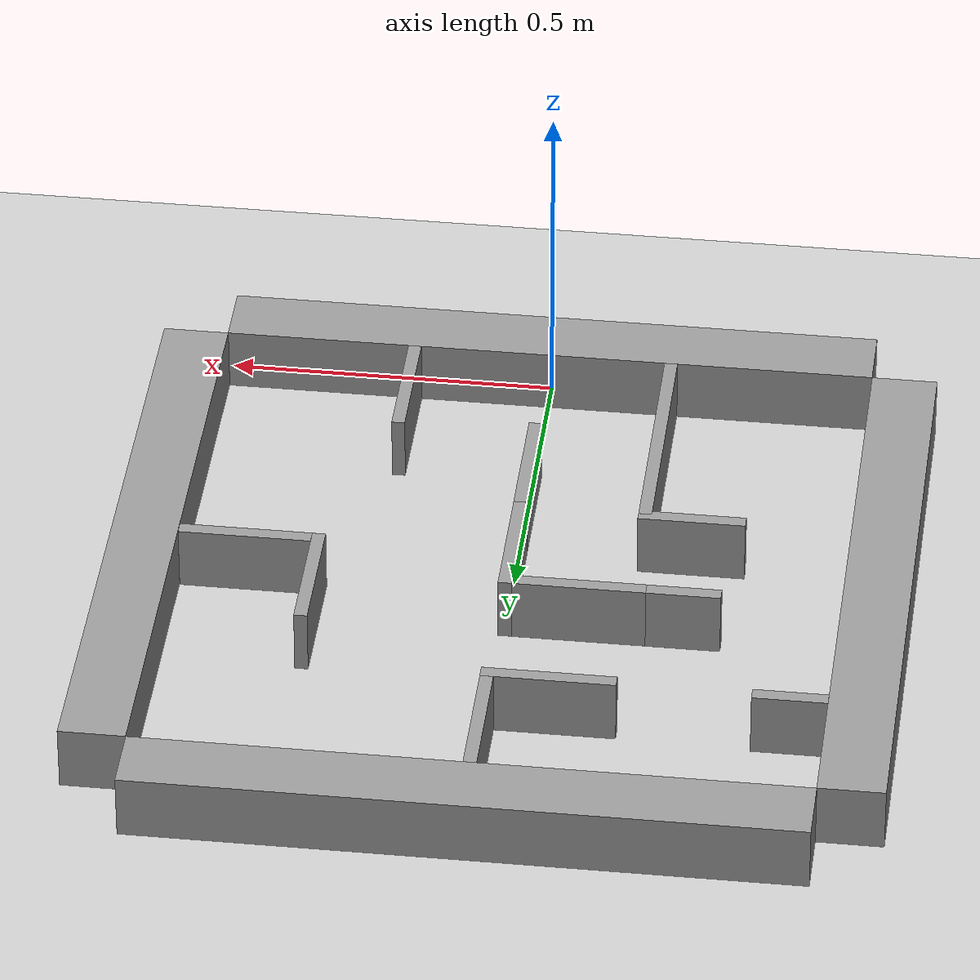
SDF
<sdf version="1.6">
 <world name="default">
  <physics type="ode">
   <ode><solver><type>quick</type><iters>50</iters><friction_model>cone_model</friction_model></solver></ode>
  </physics>
  <light name="sun" type="directional">
   <pose>0 0 10 0 -0 0</pose>
   <diffuse>0.8 0.8 0.8 1</diffuse>
   <specular>0.1 0.1 0.1 1</specular>
   <attenuation>
    <range>1000</range>
    <constant>0.9</constant>
    <linear>0.01</linear>
    <quadratic>0.001</quadratic>
   </attenuation>
   <direction>-0.5 0.5 -1</direction>
  </light>
  <model name="ground_plane">
   <static>1</static>
   <link name="link">
    <collision name="collision">
     <geometry><plane><normal>0 0 1</normal><size>100 100</size></plane></geometry>
     <surface><friction><ode><mu>100</mu><mu2>50</mu2></ode></friction></surface>
    </collision>
    <visual name="visual">
     <cast_shadows>0</cast_shadows>
     <geometry><plane><normal>0 0 1</normal><size>100 100</size></plane></geometry>
     <material>
      <script><uri>file://media/materials/scripts/gazebo.material</uri><name>Gazebo/Grey</name></script>
     </material>
    </visual>
   </link>
  </model>
  <gravity>0 0 -9.8</gravity>
  <magnetic_field>6e-06 2.3e-05 -4.2e-05</magnetic_field>
  <atmosphere type="adiabatic"/>
  <physics name="default_physics" default="0" type="ode">
   <max_step_size>0.001</max_step_size>
   <real_time_factor>1</real_time_factor>
   <real_time_update_rate>1000</real_time_update_rate>
  </physics>
  <scene><ambient>0.4 0.4 0.4 1</ambient><background>0.7 0.7 0.7 1</background><shadows>1</shadows></scene>
  <spherical_coordinates>
   <surface_model>EARTH_WGS84</surface_model>
   <latitude_deg>0</latitude_deg>
   <longitude_deg>0</longitude_deg>
   <elevation>0</elevation>
   <heading_deg>0</heading_deg>
  </spherical_coordinates>
  <model name="vector_world_1">
   <link name="link_0">
    <pose>0.028912 -0.558929 0 0 -0 0</pose>
    <inertial>
     <mass>1</mass>
     <inertia>
      <ixx>0.166667</ixx>
      <ixy>0</ixy>
      <ixz>0</ixz>
      <iyy>0.166667</iyy>
      <iyz>0</iyz>
      <izz>0.166667</izz>
     </inertia>
    </inertial>
    <visual name="visual">
     <geometry><box><size>1 0.1 0.1</size></box></geometry>
     <material>
      <lighting>1</lighting>
      <script><uri>file://media/materials/scripts/gazebo.material</uri><name>Gazebo/Grey</name></script>
      <ambient>0.3 0.3 0.3 1</ambient>
      <diffuse>0.7 0.7 0.7 1</diffuse>
      <specular>0.01 0.01 0.01 1</specular>
      <emissive>0 0 0 1</emissive>
      <shader type="vertex"><normal_map>__default__</normal_map></shader>
     </material>
    </visual>
    <collision name="collision">
     <geometry><box><size>1 0.1 0.1</size></box></geometry>
     <surface>
      <friction>
       <ode><mu>1</mu><mu2>1</mu2><fdir1>0 0 0</fdir1><slip1>0</slip1><slip2>0</slip2></ode>
       <torsional>
        <coefficient>1</coefficient>
        <patch_radius>0</patch_radius>
        <surface_radius>0</surface_radius>
        <use_patch_radius>1</use_patch_radius>
        <ode><slip>0</slip></ode>
       </torsional>
      </friction>
      <bounce><restitution_coefficient>0</restitution_coefficient><threshold>1e+06</threshold></bounce>
      <contact>
       <collide_without_contact>0</collide_without_contact>
       <collide_without_contact_bitmask>1</collide_without_contact_bitmask>
       <collide_bitmask>1</collide_bitmask>
       <ode>
        <soft_cfm>0</soft_cfm>
        <soft_erp>0.2</soft_erp>
        <kp>1e+13</kp>
        <kd>1</kd>
        <max_vel>0.01</max_vel>
        <min_depth>0</min_depth>
       </ode>
       <bullet>
        <split_impulse>1</split_impulse>
        <split_impulse_penetration_threshold>-0.01</split_impulse_penetration_threshold>
        <soft_cfm>0</soft_cfm>
        <soft_erp>0.2</soft_erp>
        <kp>1e+13</kp>
        <kd>1</kd>
       </bullet>
      </contact>
     </surface>
    </collision>
   </link>
   <link name="link_0_clone">
    <pose>0.578912 -0.008929 0 0 -0 1.57</pose>
    <inertial>
     <mass>1</mass>
     <inertia>
      <ixx>0.166667</ixx>
      <ixy>0</ixy>
      <ixz>0</ixz>
      <iyy>0.166667</iyy>
      <iyz>0</iyz>
      <izz>0.166667</izz>
     </inertia>
    </inertial>
    <visual name="visual">
     <geometry><box><size>1 0.1 0.1</size></box></geometry>
     <material>
      <lighting>1</lighting>
      <script><uri>file://media/materials/scripts/gazebo.material</uri><name>Gazebo/Grey</name></script>
      <ambient>0.3 0.3 0.3 1</ambient>
      <diffuse>0.7 0.7 0.7 1</diffuse>
      <specular>0.01 0.01 0.01 1</specular>
      <emissive>0 0 0 1</emissive>
      <shader type="vertex"><normal_map>__default__</normal_map></shader>
     </material>
    </visual>
    <collision name="collision">
     <geometry><box><size>1 0.1 0.1</size></box></geometry>
     <surface>
      <friction>
       <ode><mu>1</mu><mu2>1</mu2><fdir1>0 0 0</fdir1><slip1>0</slip1><slip2>0</slip2></ode>
       <torsional>
        <coefficient>1</coefficient>
        <patch_radius>0</patch_radius>
        <surface_radius>0</surface_radius>
        <use_patch_radius>1</use_patch_radius>
        <ode><slip>0</slip></ode>
       </torsional>
      </friction>
      <bounce><restitution_coefficient>0</restitution_coefficient><threshold>1e+06</threshold></bounce>
      <contact>
       <collide_without_contact>0</collide_without_contact>
       <collide_without_contact_bitmask>1</collide_without_contact_bitmask>
       <collide_bitmask>1</collide_bitmask>
       <ode>
        <soft_cfm>0</soft_cfm>
        <soft_erp>0.2</soft_erp>
        <kp>1e+13</kp>
        <kd>1</kd>
        <max_vel>0.01</max_vel>
        <min_depth>0</min_depth>
       </ode>
       <bullet>
        <split_impulse>1</split_impulse>
        <split_impulse_penetration_threshold>-0.01</split_impulse_penetration_threshold>
        <soft_cfm>0</soft_cfm>
        <soft_erp>0.2</soft_erp>
        <kp>1e+13</kp>
        <kd>1</kd>
       </bullet>
      </contact>
     </surface>
    </collision>
   </link>
   <link name="link_0_clone_0">
    <pose>-0.521088 -0.008929 0 0 -0 1.57</pose>
    <inertial>
     <mass>1</mass>
     <inertia>
      <ixx>0.166667</ixx>
      <ixy>0</ixy>
      <ixz>0</ixz>
      <iyy>0.166667</iyy>
      <iyz>0</iyz>
      <izz>0.166667</izz>
     </inertia>
    </inertial>
    <visual name="visual">
     <geometry><box><size>1 0.1 0.1</size></box></geometry>
     <material>
      <lighting>1</lighting>
      <script><uri>file://media/materials/scripts/gazebo.material</uri><name>Gazebo/Grey</name></script>
      <ambient>0.3 0.3 0.3 1</ambient>
      <diffuse>0.7 0.7 0.7 1</diffuse>
      <specular>0.01 0.01 0.01 1</specular>
      <emissive>0 0 0 1</emissive>
      <shader type="vertex"><normal_map>__default__</normal_map></shader>
     </material>
    </visual>
    <collision name="collision">
     <geometry><box><size>1 0.1 0.1</size></box></geometry>
     <surface>
      <friction>
       <ode><mu>1</mu><mu2>1</mu2><fdir1>0 0 0</fdir1><slip1>0</slip1><slip2>0</slip2></ode>
       <torsional>
        <coefficient>1</coefficient>
        <patch_radius>0</patch_radius>
        <surface_radius>0</surface_radius>
        <use_patch_radius>1</use_patch_radius>
        <ode><slip>0</slip></ode>
       </torsional>
      </friction>
      <bounce><restitution_coefficient>0</restitution_coefficient><threshold>1e+06</threshold></bounce>
      <contact>
       <collide_without_contact>0</collide_without_contact>
       <collide_without_contact_bitmask>1</collide_without_contact_bitmask>
       <collide_bitmask>1</collide_bitmask>
       <ode>
        <soft_cfm>0</soft_cfm>
        <soft_erp>0.2</soft_erp>
        <kp>1e+13</kp>
        <kd>1</kd>
        <max_vel>0.01</max_vel>
        <min_depth>0</min_depth>
       </ode>
       <bullet>
        <split_impulse>1</split_impulse>
        <split_impulse_penetration_threshold>-0.01</split_impulse_penetration_threshold>
        <soft_cfm>0</soft_cfm>
        <soft_erp>0.2</soft_erp>
        <kp>1e+13</kp>
        <kd>1</kd>
       </bullet>
      </contact>
     </surface>
    </collision>
   </link>
   <link name="link_0_clone_1">
    <pose>0.028912 0.541071 0 0 -0 0</pose>
    <inertial>
     <mass>1</mass>
     <inertia>
      <ixx>0.166667</ixx>
      <ixy>0</ixy>
      <ixz>0</ixz>
      <iyy>0.166667</iyy>
      <iyz>0</iyz>
      <izz>0.166667</izz>
     </inertia>
    </inertial>
    <visual name="visual">
     <geometry><box><size>1 0.1 0.1</size></box></geometry>
     <material>
      <lighting>1</lighting>
      <script><uri>file://media/materials/scripts/gazebo.material</uri><name>Gazebo/Grey</name></script>
      <ambient>0.3 0.3 0.3 1</ambient>
      <diffuse>0.7 0.7 0.7 1</diffuse>
      <specular>0.01 0.01 0.01 1</specular>
      <emissive>0 0 0 1</emissive>
      <shader type="vertex"><normal_map>__default__</normal_map></shader>
     </material>
    </visual>
    <collision name="collision">
     <geometry><box><size>1 0.1 0.1</size></box></geometry>
     <surface>
      <friction>
       <ode><mu>1</mu><mu2>1</mu2><fdir1>0 0 0</fdir1><slip1>0</slip1><slip2>0</slip2></ode>
       <torsional>
        <coefficient>1</coefficient>
        <patch_radius>0</patch_radius>
        <surface_radius>0</surface_radius>
        <use_patch_radius>1</use_patch_radius>
        <ode><slip>0</slip></ode>
       </torsional>
      </friction>
      <bounce><restitution_coefficient>0</restitution_coefficient><threshold>1e+06</threshold></bounce>
      <contact>
       <collide_without_contact>0</collide_without_contact>
       <collide_without_contact_bitmask>1</collide_without_contact_bitmask>
       <collide_bitmask>1</collide_bitmask>
       <ode>
        <soft_cfm>0</soft_cfm>
        <soft_erp>0.2</soft_erp>
        <kp>1e+13</kp>
        <kd>1</kd>
        <max_vel>0.01</max_vel>
        <min_depth>0</min_depth>
       </ode>
       <bullet>
        <split_impulse>1</split_impulse>
        <split_impulse_penetration_threshold>-0.01</split_impulse_penetration_threshold>
        <soft_cfm>0</soft_cfm>
        <soft_erp>0.2</soft_erp>
        <kp>1e+13</kp>
        <kd>1</kd>
       </bullet>
      </contact>
     </surface>
    </collision>
   </link>
   <link name="link_1">
    <pose>0.428514 -0.008929 0 0 -0 0</pose>
    <inertial>
     <mass>1</mass>
     <inertia>
      <ixx>0.166667</ixx>
      <ixy>0</ixy>
      <ixz>0</ixz>
      <iyy>0.166667</iyy>
      <iyz>0</iyz>
      <izz>0.166667</izz>
     </inertia>
    </inertial>
    <visual name="visual">
     <geometry><box><size>0.2 0.02 0.1</size></box></geometry>
     <material>
      <lighting>1</lighting>
      <script><uri>file://media/materials/scripts/gazebo.material</uri><name>Gazebo/Grey</name></script>
      <ambient>0.3 0.3 0.3 1</ambient>
      <diffuse>0.7 0.7 0.7 1</diffuse>
      <specular>0.01 0.01 0.01 1</specular>
      <emissive>0 0 0 1</emissive>
      <shader type="vertex"><normal_map>__default__</normal_map></shader>
     </material>
    </visual>
    <collision name="collision">
     <geometry><box><size>0.2 0.02 0.1</size></box></geometry>
     <surface>
      <friction>
       <ode><mu>1</mu><mu2>1</mu2><fdir1>0 0 0</fdir1><slip1>0</slip1><slip2>0</slip2></ode>
       <torsional>
        <coefficient>1</coefficient>
        <patch_radius>0</patch_radius>
        <surface_radius>0</surface_radius>
        <use_patch_radius>1</use_patch_radius>
        <ode><slip>0</slip></ode>
       </torsional>
      </friction>
      <bounce><restitution_coefficient>0</restitution_coefficient><threshold>1e+06</threshold></bounce>
      <contact>
       <collide_without_contact>0</collide_without_contact>
       <collide_without_contact_bitmask>1</collide_without_contact_bitmask>
       <collide_bitmask>1</collide_bitmask>
       <ode>
        <soft_cfm>0</soft_cfm>
        <soft_erp>0.2</soft_erp>
        <kp>1e+13</kp>
        <kd>1</kd>
        <max_vel>0.01</max_vel>
        <min_depth>0</min_depth>
       </ode>
       <bullet>
        <split_impulse>1</split_impulse>
        <split_impulse_penetration_threshold>-0.01</split_impulse_penetration_threshold>
        <soft_cfm>0</soft_cfm>
        <soft_erp>0.2</soft_erp>
        <kp>1e+13</kp>
        <kd>1</kd>
       </bullet>
      </contact>
     </surface>
    </collision>
   </link>
   <link name="link_1_clone">
    <pose>0.318435 0.081079 0 0 -0 1.57</pose>
    <inertial>
     <mass>1</mass>
     <inertia>
      <ixx>0.166667</ixx>
      <ixy>0</ixy>
      <ixz>0</ixz>
      <iyy>0.166667</iyy>
      <iyz>0</iyz>
      <izz>0.166667</izz>
     </inertia>
    </inertial>
    <visual name="visual">
     <geometry><box><size>0.2 0.02 0.1</size></box></geometry>
     <material>
      <lighting>1</lighting>
      <script><uri>file://media/materials/scripts/gazebo.material</uri><name>Gazebo/Grey</name></script>
      <ambient>0.3 0.3 0.3 1</ambient>
      <diffuse>0.7 0.7 0.7 1</diffuse>
      <specular>0.01 0.01 0.01 1</specular>
      <emissive>0 0 0 1</emissive>
      <shader type="vertex"><normal_map>__default__</normal_map></shader>
     </material>
    </visual>
    <collision name="collision">
     <geometry><box><size>0.2 0.02 0.1</size></box></geometry>
     <surface>
      <friction>
       <ode><mu>1</mu><mu2>1</mu2><fdir1>0 0 0</fdir1><slip1>0</slip1><slip2>0</slip2></ode>
       <torsional>
        <coefficient>1</coefficient>
        <patch_radius>0</patch_radius>
        <surface_radius>0</surface_radius>
        <use_patch_radius>1</use_patch_radius>
        <ode><slip>0</slip></ode>
       </torsional>
      </friction>
      <bounce><restitution_coefficient>0</restitution_coefficient><threshold>1e+06</threshold></bounce>
      <contact>
       <collide_without_contact>0</collide_without_contact>
       <collide_without_contact_bitmask>1</collide_without_contact_bitmask>
       <collide_bitmask>1</collide_bitmask>
       <ode>
        <soft_cfm>0</soft_cfm>
        <soft_erp>0.2</soft_erp>
        <kp>1e+13</kp>
        <kd>1</kd>
        <max_vel>0.01</max_vel>
        <min_depth>0</min_depth>
       </ode>
       <bullet>
        <split_impulse>1</split_impulse>
        <split_impulse_penetration_threshold>-0.01</split_impulse_penetration_threshold>
        <soft_cfm>0</soft_cfm>
        <soft_erp>0.2</soft_erp>
        <kp>1e+13</kp>
        <kd>1</kd>
       </bullet>
      </contact>
     </surface>
    </collision>
   </link>
   <link name="link_1_clone_0">
    <pose>0.028912 0.391063 0 0 -0 1.57</pose>
    <inertial>
     <mass>1</mass>
     <inertia>
      <ixx>0.166667</ixx>
      <ixy>0</ixy>
      <ixz>0</ixz>
      <iyy>0.166667</iyy>
      <iyz>0</iyz>
      <izz>0.166667</izz>
     </inertia>
    </inertial>
    <visual name="visual">
     <geometry><box><size>0.2 0.02 0.1</size></box></geometry>
     <material>
      <lighting>1</lighting>
      <script><uri>file://media/materials/scripts/gazebo.material</uri><name>Gazebo/Grey</name></script>
      <ambient>0.3 0.3 0.3 1</ambient>
      <diffuse>0.7 0.7 0.7 1</diffuse>
      <specular>0.01 0.01 0.01 1</specular>
      <emissive>0 0 0 1</emissive>
      <shader type="vertex"><normal_map>__default__</normal_map></shader>
     </material>
    </visual>
    <collision name="collision">
     <geometry><box><size>0.2 0.02 0.1</size></box></geometry>
     <surface>
      <friction>
       <ode><mu>1</mu><mu2>1</mu2><fdir1>0 0 0</fdir1><slip1>0</slip1><slip2>0</slip2></ode>
       <torsional>
        <coefficient>1</coefficient>
        <patch_radius>0</patch_radius>
        <surface_radius>0</surface_radius>
        <use_patch_radius>1</use_patch_radius>
        <ode><slip>0</slip></ode>
       </torsional>
      </friction>
      <bounce><restitution_coefficient>0</restitution_coefficient><threshold>1e+06</threshold></bounce>
      <contact>
       <collide_without_contact>0</collide_without_contact>
       <collide_without_contact_bitmask>1</collide_without_contact_bitmask>
       <collide_bitmask>1</collide_bitmask>
       <ode>
        <soft_cfm>0</soft_cfm>
        <soft_erp>0.2</soft_erp>
        <kp>1e+13</kp>
        <kd>1</kd>
        <max_vel>0.01</max_vel>
        <min_depth>0</min_depth>
       </ode>
       <bullet>
        <split_impulse>1</split_impulse>
        <split_impulse_penetration_threshold>-0.01</split_impulse_penetration_threshold>
        <soft_cfm>0</soft_cfm>
        <soft_erp>0.2</soft_erp>
        <kp>1e+13</kp>
        <kd>1</kd>
       </bullet>
      </contact>
     </surface>
    </collision>
   </link>
   <link name="link_1_clone_0_clone">
    <pose>0.028912 -0.032001 0 0 -0 1.57</pose>
    <inertial>
     <mass>1</mass>
     <inertia>
      <ixx>0.166667</ixx>
      <ixy>0</ixy>
      <ixz>0</ixz>
      <iyy>0.166667</iyy>
      <iyz>0</iyz>
      <izz>0.166667</izz>
     </inertia>
    </inertial>
    <visual name="visual">
     <geometry><box><size>0.2 0.02 0.1</size></box></geometry>
     <material>
      <lighting>1</lighting>
      <script><uri>file://media/materials/scripts/gazebo.material</uri><name>Gazebo/Grey</name></script>
      <ambient>0.3 0.3 0.3 1</ambient>
      <diffuse>0.7 0.7 0.7 1</diffuse>
      <specular>0.01 0.01 0.01 1</specular>
      <emissive>0 0 0 1</emissive>
      <shader type="vertex"><normal_map>__default__</normal_map></shader>
     </material>
    </visual>
    <collision name="collision">
     <geometry><box><size>0.2 0.02 0.1</size></box></geometry>
     <surface>
      <friction>
       <ode><mu>1</mu><mu2>1</mu2><fdir1>0 0 0</fdir1><slip1>0</slip1><slip2>0</slip2></ode>
       <torsional>
        <coefficient>1</coefficient>
        <patch_radius>0</patch_radius>
        <surface_radius>0</surface_radius>
        <use_patch_radius>1</use_patch_radius>
        <ode><slip>0</slip></ode>
       </torsional>
      </friction>
      <bounce><restitution_coefficient>0</restitution_coefficient><threshold>1e+06</threshold></bounce>
      <contact>
       <collide_without_contact>0</collide_without_contact>
       <collide_without_contact_bitmask>1</collide_without_contact_bitmask>
       <collide_bitmask>1</collide_bitmask>
       <ode>
        <soft_cfm>0</soft_cfm>
        <soft_erp>0.2</soft_erp>
        <kp>1e+13</kp>
        <kd>1</kd>
        <max_vel>0.01</max_vel>
        <min_depth>0</min_depth>
       </ode>
       <bullet>
        <split_impulse>1</split_impulse>
        <split_impulse_penetration_threshold>-0.01</split_impulse_penetration_threshold>
        <soft_cfm>0</soft_cfm>
        <soft_erp>0.2</soft_erp>
        <kp>1e+13</kp>
        <kd>1</kd>
       </bullet>
      </contact>
     </surface>
    </collision>
   </link>
   <link name="link_1_clone_0_clone_0">
    <pose>0.028912 -0.232016 0 0 -0 1.57</pose>
    <inertial>
     <mass>1</mass>
     <inertia>
      <ixx>0.166667</ixx>
      <ixy>0</ixy>
      <ixz>0</ixz>
      <iyy>0.166667</iyy>
      <iyz>0</iyz>
      <izz>0.166667</izz>
     </inertia>
    </inertial>
    <visual name="visual">
     <geometry><box><size>0.2 0.02 0.1</size></box></geometry>
     <material>
      <lighting>1</lighting>
      <script><uri>file://media/materials/scripts/gazebo.material</uri><name>Gazebo/Grey</name></script>
      <ambient>0.3 0.3 0.3 1</ambient>
      <diffuse>0.7 0.7 0.7 1</diffuse>
      <specular>0.01 0.01 0.01 1</specular>
      <emissive>0 0 0 1</emissive>
      <shader type="vertex"><normal_map>__default__</normal_map></shader>
     </material>
    </visual>
    <collision name="collision">
     <geometry><box><size>0.2 0.02 0.1</size></box></geometry>
     <surface>
      <friction>
       <ode><mu>1</mu><mu2>1</mu2><fdir1>0 0 0</fdir1><slip1>0</slip1><slip2>0</slip2></ode>
       <torsional>
        <coefficient>1</coefficient>
        <patch_radius>0</patch_radius>
        <surface_radius>0</surface_radius>
        <use_patch_radius>1</use_patch_radius>
        <ode><slip>0</slip></ode>
       </torsional>
      </friction>
      <bounce><restitution_coefficient>0</restitution_coefficient><threshold>1e+06</threshold></bounce>
      <contact>
       <collide_without_contact>0</collide_without_contact>
       <collide_without_contact_bitmask>1</collide_without_contact_bitmask>
       <collide_bitmask>1</collide_bitmask>
       <ode>
        <soft_cfm>0</soft_cfm>
        <soft_erp>0.2</soft_erp>
        <kp>1e+13</kp>
        <kd>1</kd>
        <max_vel>0.01</max_vel>
        <min_depth>0</min_depth>
       </ode>
       <bullet>
        <split_impulse>1</split_impulse>
        <split_impulse_penetration_threshold>-0.01</split_impulse_penetration_threshold>
        <soft_cfm>0</soft_cfm>
        <soft_erp>0.2</soft_erp>
        <kp>1e+13</kp>
        <kd>1</kd>
       </bullet>
      </contact>
     </surface>
    </collision>
   </link>
   <link name="link_1_clone_0_clone_0_clone">
    <pose>-0.160723 -0.316474 0 0 -0 1.57</pose>
    <inertial>
     <mass>1.92446</mass>
     <inertia>
      <ixx>0.320744</ixx>
      <ixy>0</ixy>
      <ixz>0</ixz>
      <iyy>0.754316</iyy>
      <iyz>0</iyz>
      <izz>0.754316</izz>
     </inertia>
    </inertial>
    <visual name="visual">
     <geometry><box><size>0.384894 0.02 0.1</size></box></geometry>
     <material>
      <lighting>1</lighting>
      <script><uri>file://media/materials/scripts/gazebo.material</uri><name>Gazebo/Grey</name></script>
      <ambient>0.3 0.3 0.3 1</ambient>
      <diffuse>0.7 0.7 0.7 1</diffuse>
      <specular>0.01 0.01 0.01 1</specular>
      <emissive>0 0 0 1</emissive>
      <shader type="vertex"><normal_map>__default__</normal_map></shader>
     </material>
    </visual>
    <collision name="collision">
     <geometry><box><size>0.384894 0.02 0.1</size></box></geometry>
     <surface>
      <friction>
       <ode><mu>1</mu><mu2>1</mu2><fdir1>0 0 0</fdir1><slip1>0</slip1><slip2>0</slip2></ode>
       <torsional>
        <coefficient>1</coefficient>
        <patch_radius>0</patch_radius>
        <surface_radius>0</surface_radius>
        <use_patch_radius>1</use_patch_radius>
        <ode><slip>0</slip></ode>
       </torsional>
      </friction>
      <bounce><restitution_coefficient>0</restitution_coefficient><threshold>1e+06</threshold></bounce>
      <contact>
       <collide_without_contact>0</collide_without_contact>
       <collide_without_contact_bitmask>1</collide_without_contact_bitmask>
       <collide_bitmask>1</collide_bitmask>
       <ode>
        <soft_cfm>0</soft_cfm>
        <soft_erp>0.2</soft_erp>
        <kp>1e+13</kp>
        <kd>1</kd>
        <max_vel>0.01</max_vel>
        <min_depth>0</min_depth>
       </ode>
       <bullet>
        <split_impulse>1</split_impulse>
        <split_impulse_penetration_threshold>-0.01</split_impulse_penetration_threshold>
        <soft_cfm>0</soft_cfm>
        <soft_erp>0.2</soft_erp>
        <kp>1e+13</kp>
        <kd>1</kd>
       </bullet>
      </contact>
     </surface>
    </collision>
   </link>
   <link name="link_1_clone_0_clone_1">
    <pose>0.236977 -0.408921 0 0 -0 1.57</pose>
    <inertial>
     <mass>1</mass>
     <inertia>
      <ixx>0.166667</ixx>
      <ixy>0</ixy>
      <ixz>0</ixz>
      <iyy>0.166667</iyy>
      <iyz>0</iyz>
      <izz>0.166667</izz>
     </inertia>
    </inertial>
    <visual name="visual">
     <geometry><box><size>0.2 0.02 0.1</size></box></geometry>
     <material>
      <lighting>1</lighting>
      <script><uri>file://media/materials/scripts/gazebo.material</uri><name>Gazebo/Grey</name></script>
      <ambient>0.3 0.3 0.3 1</ambient>
      <diffuse>0.7 0.7 0.7 1</diffuse>
      <specular>0.01 0.01 0.01 1</specular>
      <emissive>0 0 0 1</emissive>
      <shader type="vertex"><normal_map>__default__</normal_map></shader>
     </material>
    </visual>
    <collision name="collision">
     <geometry><box><size>0.2 0.02 0.1</size></box></geometry>
     <surface>
      <friction>
       <ode><mu>1</mu><mu2>1</mu2><fdir1>0 0 0</fdir1><slip1>0</slip1><slip2>0</slip2></ode>
       <torsional>
        <coefficient>1</coefficient>
        <patch_radius>0</patch_radius>
        <surface_radius>0</surface_radius>
        <use_patch_radius>1</use_patch_radius>
        <ode><slip>0</slip></ode>
       </torsional>
      </friction>
      <bounce><restitution_coefficient>0</restitution_coefficient><threshold>1e+06</threshold></bounce>
      <contact>
       <collide_without_contact>0</collide_without_contact>
       <collide_without_contact_bitmask>1</collide_without_contact_bitmask>
       <collide_bitmask>1</collide_bitmask>
       <ode>
        <soft_cfm>0</soft_cfm>
        <soft_erp>0.2</soft_erp>
        <kp>1e+13</kp>
        <kd>1</kd>
        <max_vel>0.01</max_vel>
        <min_depth>0</min_depth>
       </ode>
       <bullet>
        <split_impulse>1</split_impulse>
        <split_impulse_penetration_threshold>-0.01</split_impulse_penetration_threshold>
        <soft_cfm>0</soft_cfm>
        <soft_erp>0.2</soft_erp>
        <kp>1e+13</kp>
        <kd>1</kd>
       </bullet>
      </contact>
     </surface>
    </collision>
   </link>
   <link name="link_1_clone_1">
    <pose>-0.061008 0.281055 0 0 -0 0</pose>
    <inertial>
     <mass>1</mass>
     <inertia>
      <ixx>0.166667</ixx>
      <ixy>0</ixy>
      <ixz>0</ixz>
      <iyy>0.166667</iyy>
      <iyz>0</iyz>
      <izz>0.166667</izz>
     </inertia>
    </inertial>
    <visual name="visual">
     <geometry><box><size>0.2 0.02 0.1</size></box></geometry>
     <material>
      <lighting>1</lighting>
      <script><uri>file://media/materials/scripts/gazebo.material</uri><name>Gazebo/Grey</name></script>
      <ambient>0.3 0.3 0.3 1</ambient>
      <diffuse>0.7 0.7 0.7 1</diffuse>
      <specular>0.01 0.01 0.01 1</specular>
      <emissive>0 0 0 1</emissive>
      <shader type="vertex"><normal_map>__default__</normal_map></shader>
     </material>
    </visual>
    <collision name="collision">
     <geometry><box><size>0.2 0.02 0.1</size></box></geometry>
     <surface>
      <friction>
       <ode><mu>1</mu><mu2>1</mu2><fdir1>0 0 0</fdir1><slip1>0</slip1><slip2>0</slip2></ode>
       <torsional>
        <coefficient>1</coefficient>
        <patch_radius>0</patch_radius>
        <surface_radius>0</surface_radius>
        <use_patch_radius>1</use_patch_radius>
        <ode><slip>0</slip></ode>
       </torsional>
      </friction>
      <bounce><restitution_coefficient>0</restitution_coefficient><threshold>1e+06</threshold></bounce>
      <contact>
       <collide_without_contact>0</collide_without_contact>
       <collide_without_contact_bitmask>1</collide_without_contact_bitmask>
       <collide_bitmask>1</collide_bitmask>
       <ode>
        <soft_cfm>0</soft_cfm>
        <soft_erp>0.2</soft_erp>
        <kp>1e+13</kp>
        <kd>1</kd>
        <max_vel>0.01</max_vel>
        <min_depth>0</min_depth>
       </ode>
       <bullet>
        <split_impulse>1</split_impulse>
        <split_impulse_penetration_threshold>-0.01</split_impulse_penetration_threshold>
        <soft_cfm>0</soft_cfm>
        <soft_erp>0.2</soft_erp>
        <kp>1e+13</kp>
        <kd>1</kd>
       </bullet>
      </contact>
     </surface>
    </collision>
   </link>
   <link name="link_1_clone_2">
    <pose>-0.081167 0.058007 0 0 -0 0</pose>
    <inertial>
     <mass>1</mass>
     <inertia>
      <ixx>0.166667</ixx>
      <ixy>0</ixy>
      <ixz>0</ixz>
      <iyy>0.166667</iyy>
      <iyz>0</iyz>
      <izz>0.166667</izz>
     </inertia>
    </inertial>
    <visual name="visual">
     <geometry><box><size>0.2 0.02 0.1</size></box></geometry>
     <material>
      <lighting>1</lighting>
      <script><uri>file://media/materials/scripts/gazebo.material</uri><name>Gazebo/Grey</name></script>
      <ambient>0.3 0.3 0.3 1</ambient>
      <diffuse>0.7 0.7 0.7 1</diffuse>
      <specular>0.01 0.01 0.01 1</specular>
      <emissive>0 0 0 1</emissive>
      <shader type="vertex"><normal_map>__default__</normal_map></shader>
     </material>
    </visual>
    <collision name="collision">
     <geometry><box><size>0.2 0.02 0.1</size></box></geometry>
     <surface>
      <friction>
       <ode><mu>1</mu><mu2>1</mu2><fdir1>0 0 0</fdir1><slip1>0</slip1><slip2>0</slip2></ode>
       <torsional>
        <coefficient>1</coefficient>
        <patch_radius>0</patch_radius>
        <surface_radius>0</surface_radius>
        <use_patch_radius>1</use_patch_radius>
        <ode><slip>0</slip></ode>
       </torsional>
      </friction>
      <bounce><restitution_coefficient>0</restitution_coefficient><threshold>1e+06</threshold></bounce>
      <contact>
       <collide_without_contact>0</collide_without_contact>
       <collide_without_contact_bitmask>1</collide_without_contact_bitmask>
       <collide_bitmask>1</collide_bitmask>
       <ode>
        <soft_cfm>0</soft_cfm>
        <soft_erp>0.2</soft_erp>
        <kp>1e+13</kp>
        <kd>1</kd>
        <max_vel>0.01</max_vel>
        <min_depth>0</min_depth>
       </ode>
       <bullet>
        <split_impulse>1</split_impulse>
        <split_impulse_penetration_threshold>-0.01</split_impulse_penetration_threshold>
        <soft_cfm>0</soft_cfm>
        <soft_erp>0.2</soft_erp>
        <kp>1e+13</kp>
        <kd>1</kd>
       </bullet>
      </contact>
     </surface>
    </collision>
   </link>
   <link name="link_1_clone_2_clone">
    <pose>-0.23699 0.058007 0 0 -0 0</pose>
    <inertial>
     <mass>0.55823</mass>
     <inertia>
      <ixx>0.0930385</ixx>
      <ixy>0</ixy>
      <ixz>0</ixz>
      <iyy>0.0610156</iyy>
      <iyz>0</iyz>
      <izz>0.0610156</izz>
     </inertia>
    </inertial>
    <visual name="visual">
     <geometry><box><size>0.111645 0.02 0.1</size></box></geometry>
     <material>
      <lighting>1</lighting>
      <script><uri>file://media/materials/scripts/gazebo.material</uri><name>Gazebo/Grey</name></script>
      <ambient>0.3 0.3 0.3 1</ambient>
      <diffuse>0.7 0.7 0.7 1</diffuse>
      <specular>0.01 0.01 0.01 1</specular>
      <emissive>0 0 0 1</emissive>
      <shader type="vertex"><normal_map>__default__</normal_map></shader>
     </material>
    </visual>
    <collision name="collision">
     <geometry><box><size>0.111645 0.02 0.1</size></box></geometry>
     <surface>
      <friction>
       <ode><mu>1</mu><mu2>1</mu2><fdir1>0 0 0</fdir1><slip1>0</slip1><slip2>0</slip2></ode>
       <torsional>
        <coefficient>1</coefficient>
        <patch_radius>0</patch_radius>
        <surface_radius>0</surface_radius>
        <use_patch_radius>1</use_patch_radius>
        <ode><slip>0</slip></ode>
       </torsional>
      </friction>
      <bounce><restitution_coefficient>0</restitution_coefficient><threshold>1e+06</threshold></bounce>
      <contact>
       <collide_without_contact>0</collide_without_contact>
       <collide_without_contact_bitmask>1</collide_without_contact_bitmask>
       <collide_bitmask>1</collide_bitmask>
       <ode>
        <soft_cfm>0</soft_cfm>
        <soft_erp>0.2</soft_erp>
        <kp>1e+13</kp>
        <kd>1</kd>
        <max_vel>0.01</max_vel>
        <min_depth>0</min_depth>
       </ode>
       <bullet>
        <split_impulse>1</split_impulse>
        <split_impulse_penetration_threshold>-0.01</split_impulse_penetration_threshold>
        <soft_cfm>0</soft_cfm>
        <soft_erp>0.2</soft_erp>
        <kp>1e+13</kp>
        <kd>1</kd>
       </bullet>
      </contact>
     </surface>
    </collision>
   </link>
   <link name="link_1_clone_2_clone_clone">
    <pose>-0.414867 0.286372 0 0 -0 0</pose>
    <inertial>
     <mass>0.55823</mass>
     <inertia>
      <ixx>0.0930385</ixx>
      <ixy>0</ixy>
      <ixz>0</ixz>
      <iyy>0.0610156</iyy>
      <iyz>0</iyz>
      <izz>0.0610156</izz>
     </inertia>
    </inertial>
    <visual name="visual">
     <geometry><box><size>0.111645 0.02 0.1</size></box></geometry>
     <material>
      <lighting>1</lighting>
      <script><uri>file://media/materials/scripts/gazebo.material</uri><name>Gazebo/Grey</name></script>
      <ambient>0.3 0.3 0.3 1</ambient>
      <diffuse>0.7 0.7 0.7 1</diffuse>
      <specular>0.01 0.01 0.01 1</specular>
      <emissive>0 0 0 1</emissive>
      <shader type="vertex"><normal_map>__default__</normal_map></shader>
     </material>
    </visual>
    <collision name="collision">
     <geometry><box><size>0.111645 0.02 0.1</size></box></geometry>
     <surface>
      <friction>
       <ode><mu>1</mu><mu2>1</mu2><fdir1>0 0 0</fdir1><slip1>0</slip1><slip2>0</slip2></ode>
       <torsional>
        <coefficient>1</coefficient>
        <patch_radius>0</patch_radius>
        <surface_radius>0</surface_radius>
        <use_patch_radius>1</use_patch_radius>
        <ode><slip>0</slip></ode>
       </torsional>
      </friction>
      <bounce><restitution_coefficient>0</restitution_coefficient><threshold>1e+06</threshold></bounce>
      <contact>
       <collide_without_contact>0</collide_without_contact>
       <collide_without_contact_bitmask>1</collide_without_contact_bitmask>
       <collide_bitmask>1</collide_bitmask>
       <ode>
        <soft_cfm>0</soft_cfm>
        <soft_erp>0.2</soft_erp>
        <kp>1e+13</kp>
        <kd>1</kd>
        <max_vel>0.01</max_vel>
        <min_depth>0</min_depth>
       </ode>
       <bullet>
        <split_impulse>1</split_impulse>
        <split_impulse_penetration_threshold>-0.01</split_impulse_penetration_threshold>
        <soft_cfm>0</soft_cfm>
        <soft_erp>0.2</soft_erp>
        <kp>1e+13</kp>
        <kd>1</kd>
       </bullet>
      </contact>
     </surface>
    </collision>
   </link>
   <link name="link_1_clone_2_clone_clone_clone">
    <pose>-0.231555 -0.121522 0 0 -0 0</pose>
    <inertial>
     <mass>0.809851</mass>
     <inertia><ixx>0.134975</ixx><ixy>0</ixy><ixz>0</ixz><iyy>0.11175</iyy><iyz>0</iyz><izz>0.11175</izz></inertia>
    </inertial>
    <visual name="visual">
     <geometry><box><size>0.16197 0.02 0.1</size></box></geometry>
     <material>
      <lighting>1</lighting>
      <script><uri>file://media/materials/scripts/gazebo.material</uri><name>Gazebo/Grey</name></script>
      <ambient>0.3 0.3 0.3 1</ambient>
      <diffuse>0.7 0.7 0.7 1</diffuse>
      <specular>0.01 0.01 0.01 1</specular>
      <emissive>0 0 0 1</emissive>
      <shader type="vertex"><normal_map>__default__</normal_map></shader>
     </material>
    </visual>
    <collision name="collision">
     <geometry><box><size>0.16197 0.02 0.1</size></box></geometry>
     <surface>
      <friction>
       <ode><mu>1</mu><mu2>1</mu2><fdir1>0 0 0</fdir1><slip1>0</slip1><slip2>0</slip2></ode>
       <torsional>
        <coefficient>1</coefficient>
        <patch_radius>0</patch_radius>
        <surface_radius>0</surface_radius>
        <use_patch_radius>1</use_patch_radius>
        <ode><slip>0</slip></ode>
       </torsional>
      </friction>
      <bounce><restitution_coefficient>0</restitution_coefficient><threshold>1e+06</threshold></bounce>
      <contact>
       <collide_without_contact>0</collide_without_contact>
       <collide_without_contact_bitmask>1</collide_without_contact_bitmask>
       <collide_bitmask>1</collide_bitmask>
       <ode>
        <soft_cfm>0</soft_cfm>
        <soft_erp>0.2</soft_erp>
        <kp>1e+13</kp>
        <kd>1</kd>
        <max_vel>0.01</max_vel>
        <min_depth>0</min_depth>
       </ode>
       <bullet>
        <split_impulse>1</split_impulse>
        <split_impulse_penetration_threshold>-0.01</split_impulse_penetration_threshold>
        <soft_cfm>0</soft_cfm>
        <soft_erp>0.2</soft_erp>
        <kp>1e+13</kp>
        <kd>1</kd>
       </bullet>
      </contact>
     </surface>
    </collision>
   </link>
   <static>0</static>
   <pose>-0.028912 0.558929 0.05 0 -0 0</pose>
  </model>
 </world>
</sdf>
